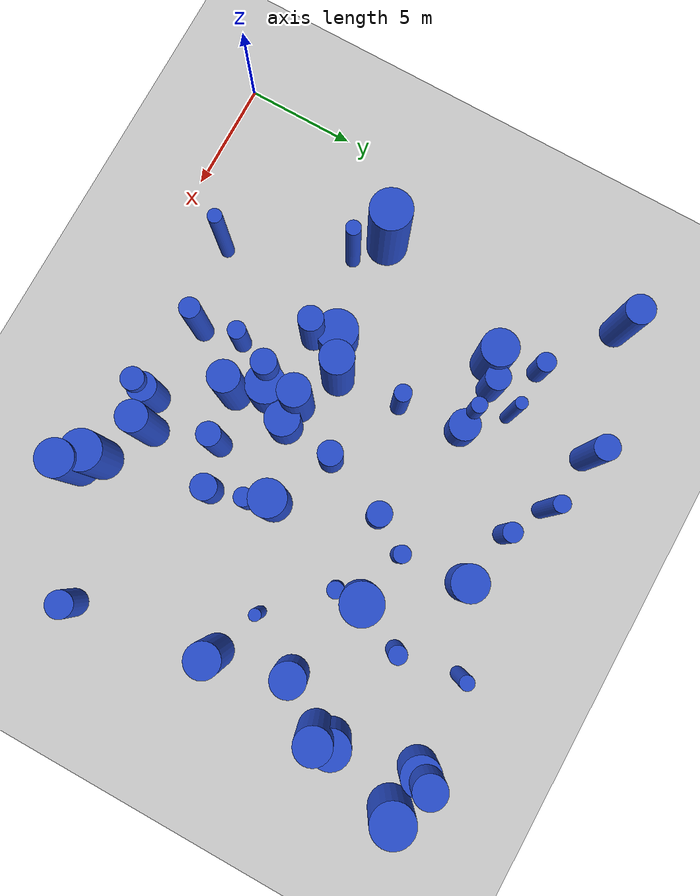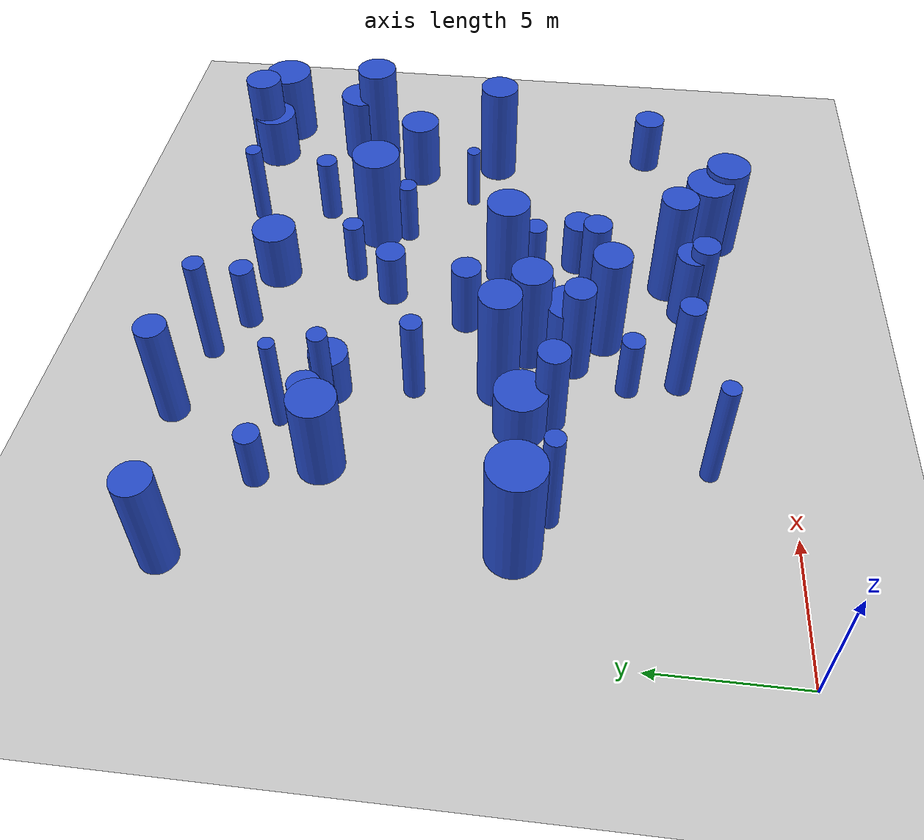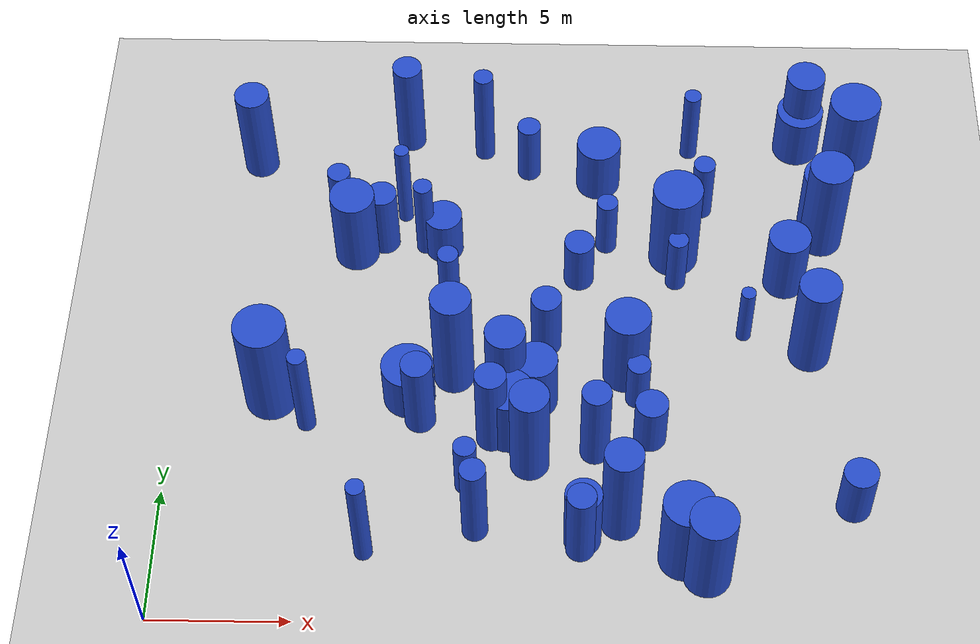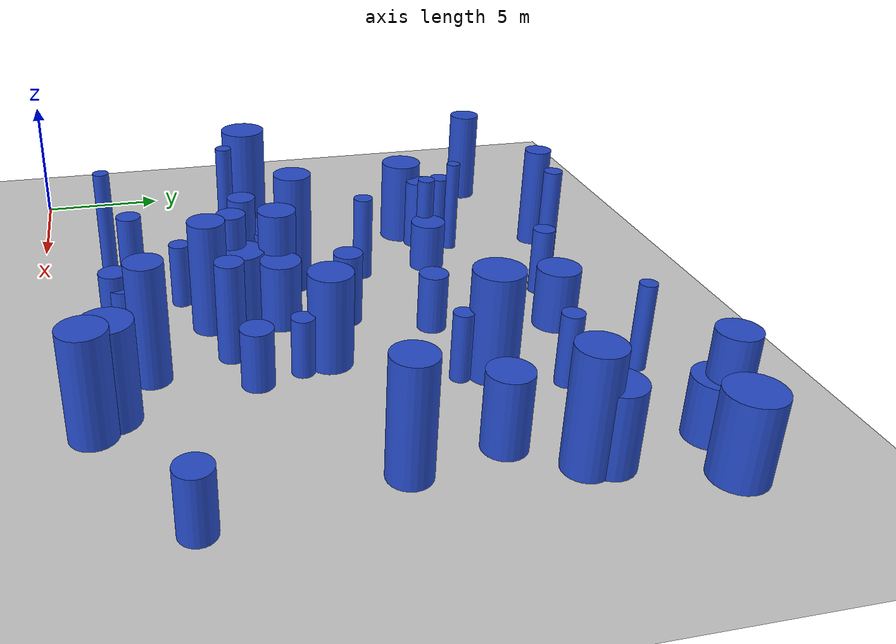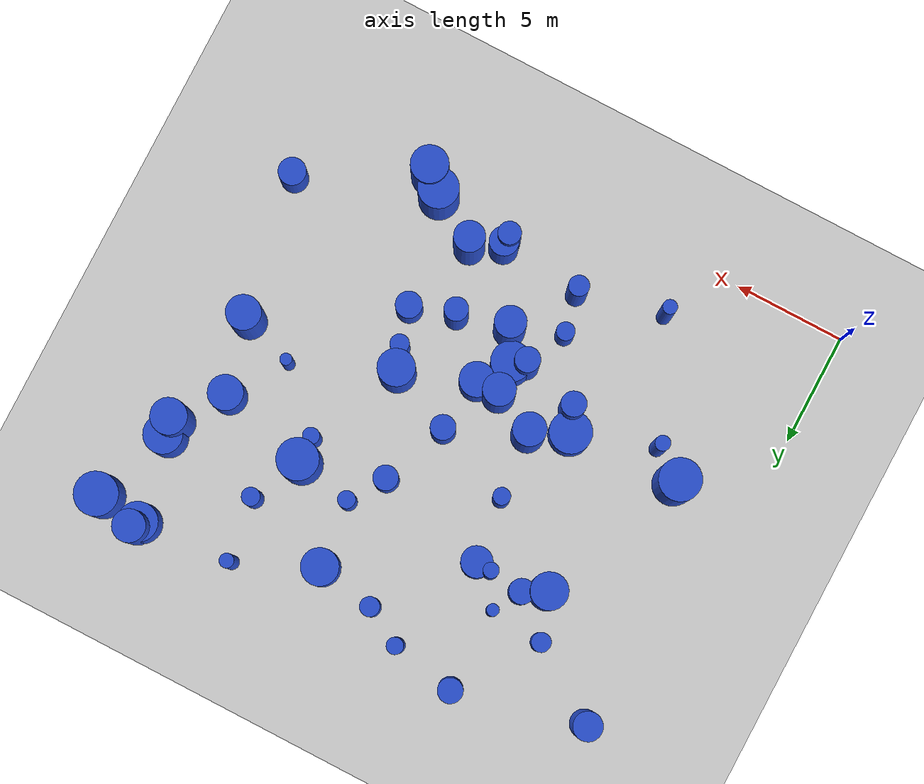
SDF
<sdf version="1.6">
 <world name="default">
  <model name="ground_plane">
   <static>1</static>
   <link name="link">
    <collision name="collision">
     <geometry><plane><normal>0 0 1</normal><size>100 100</size></plane></geometry>
     <surface><friction><ode><mu>100</mu><mu2>50</mu2></ode></friction></surface>
    </collision>
    <visual name="visual">
     <cast_shadows>0</cast_shadows>
     <geometry><plane><normal>0 0 1</normal><size>100 100</size></plane></geometry>
     <material>
      <script><uri>file://media/materials/scripts/gazebo.material</uri><name>Gazebo/Grey</name></script>
     </material>
    </visual>
   </link>
  </model>
  <model name="11">
   <static>0</static>
   <link name="link">
    <inertial>
     <mass>2</mass>
     <inertia><ixx>1.92531</ixx><ixy>0</ixy><ixz>0</ixz><iyy>1.92531</iyy><iyz>0</iyz><izz>0.103853</izz></inertia>
    </inertial>
    <collision name="collision">
     <geometry><cylinder><length>3.35266</length><radius>0.322263</radius></cylinder></geometry>
     <surface><contact><collide_without_contact>1</collide_without_contact></contact></surface>
    </collision>
    <visual name="visual">
     <geometry><cylinder><length>3.35266</length><radius>0.322263</radius></cylinder></geometry>
     <material>
      <script><uri>file://media/materials/scripts/gazebo.material</uri><name>Gazebo/Blue</name></script>
     </material>
    </visual>
    <gravity>0</gravity>
   </link>
   <pose>18.8928 20.868 1.67633 0 -0 0</pose>
  </model>
  <model name="12">
   <static>0</static>
   <link name="link">
    <inertial>
     <mass>2</mass>
     <inertia><ixx>2.8515</ixx><ixy>0</ixy><ixz>0</ixz><iyy>2.8515</iyy><iyz>0</iyz><izz>0.315958</izz></inertia>
    </inertial>
    <collision name="collision">
     <geometry><cylinder><length>4.02009</length><radius>0.562101</radius></cylinder></geometry>
     <surface><contact><collide_without_contact>1</collide_without_contact></contact></surface>
    </collision>
    <visual name="visual">
     <geometry><cylinder><length>4.02009</length><radius>0.562101</radius></cylinder></geometry>
     <material>
      <script><uri>file://media/materials/scripts/gazebo.material</uri><name>Gazebo/Blue</name></script>
     </material>
    </visual>
    <gravity>0</gravity>
   </link>
   <pose>11.5625 7.45117 2.01004 0 -0 0</pose>
  </model>
  <model name="16">
   <static>0</static>
   <link name="link">
    <inertial>
     <mass>2</mass>
     <inertia><ixx>1.17439</ixx><ixy>0</ixy><ixz>0</ixz><iyy>1.17439</iyy><iyz>0</iyz><izz>0.167306</izz></inertia>
    </inertial>
    <collision name="collision">
     <geometry><cylinder><length>2.55821</length><radius>0.40903</radius></cylinder></geometry>
     <surface><contact><collide_without_contact>1</collide_without_contact></contact></surface>
    </collision>
    <visual name="visual">
     <geometry><cylinder><length>2.55821</length><radius>0.40903</radius></cylinder></geometry>
     <material>
      <script><uri>file://media/materials/scripts/gazebo.material</uri><name>Gazebo/Blue</name></script>
     </material>
    </visual>
    <gravity>0</gravity>
   </link>
   <pose>10.7144 5.49413 1.27911 0 -0 0</pose>
  </model>
  <model name="21">
   <static>0</static>
   <link name="link">
    <inertial>
     <mass>2</mass>
     <inertia><ixx>1.51849</ixx><ixy>0</ixy><ixz>0</ixz><iyy>1.51849</iyy><iyz>0</iyz><izz>0.311536</izz></inertia>
    </inertial>
    <collision name="collision">
     <geometry><cylinder><length>2.85943</length><radius>0.558154</radius></cylinder></geometry>
     <surface><contact><collide_without_contact>1</collide_without_contact></contact></surface>
    </collision>
    <visual name="visual">
     <geometry><cylinder><length>2.85943</length><radius>0.558154</radius></cylinder></geometry>
     <material>
      <script><uri>file://media/materials/scripts/gazebo.material</uri><name>Gazebo/Blue</name></script>
     </material>
    </visual>
    <gravity>0</gravity>
   </link>
   <pose>13.4368 11.5878 1.42972 0 -0 0</pose>
  </model>
  <model name="23">
   <static>0</static>
   <link name="link">
    <inertial>
     <mass>2</mass>
     <inertia>
      <ixx>1.21853</ixx>
      <ixy>0</ixy>
      <ixz>0</ixz>
      <iyy>1.21853</iyy>
      <iyz>0</iyz>
      <izz>0.0726974</izz>
     </inertia>
    </inertial>
    <collision name="collision">
     <geometry><cylinder><length>2.66328</length><radius>0.269625</radius></cylinder></geometry>
     <surface><contact><collide_without_contact>1</collide_without_contact></contact></surface>
    </collision>
    <visual name="visual">
     <geometry><cylinder><length>2.66328</length><radius>0.269625</radius></cylinder></geometry>
     <material>
      <script><uri>file://media/materials/scripts/gazebo.material</uri><name>Gazebo/Blue</name></script>
     </material>
    </visual>
    <gravity>0</gravity>
   </link>
   <pose>20.7295 12.1101 1.33164 0 -0 0</pose>
  </model>
  <model name="29">
   <static>0</static>
   <link name="link">
    <inertial>
     <mass>2</mass>
     <inertia><ixx>1.20712</ixx><ixy>0</ixy><ixz>0</ixz><iyy>1.20712</iyy><iyz>0</iyz><izz>0.139764</izz></inertia>
    </inertial>
    <collision name="collision">
     <geometry><cylinder><length>2.61217</length><radius>0.37385</radius></cylinder></geometry>
     <surface><contact><collide_without_contact>1</collide_without_contact></contact></surface>
    </collision>
    <visual name="visual">
     <geometry><cylinder><length>2.61217</length><radius>0.37385</radius></cylinder></geometry>
     <material>
      <script><uri>file://media/materials/scripts/gazebo.material</uri><name>Gazebo/Blue</name></script>
     </material>
    </visual>
    <gravity>0</gravity>
   </link>
   <pose>18.2533 14.5095 1.30608 0 -0 0</pose>
  </model>
  <model name="30">
   <static>0</static>
   <link name="link">
    <inertial>
     <mass>2</mass>
     <inertia><ixx>4.21766</ixx><ixy>0</ixy><ixz>0</ixz><iyy>4.21766</iyy><iyz>0</iyz><izz>0.543405</izz></inertia>
    </inertial>
    <collision name="collision">
     <geometry><cylinder><length>4.86577</length><radius>0.73716</radius></cylinder></geometry>
     <surface><contact><collide_without_contact>1</collide_without_contact></contact></surface>
    </collision>
    <visual name="visual">
     <geometry><cylinder><length>4.86577</length><radius>0.73716</radius></cylinder></geometry>
     <material>
      <script><uri>file://media/materials/scripts/gazebo.material</uri><name>Gazebo/Blue</name></script>
     </material>
    </visual>
    <gravity>0</gravity>
   </link>
   <pose>10.1121 10.083 2.43289 0 -0 0</pose>
  </model>
  <model name="38">
   <static>0</static>
   <link name="link">
    <inertial>
     <mass>2</mass>
     <inertia><ixx>2.59248</ixx><ixy>0</ixy><ixz>0</ixz><iyy>2.59248</iyy><iyz>0</iyz><izz>0.279767</izz></inertia>
    </inertial>
    <collision name="collision">
     <geometry><cylinder><length>3.83609</length><radius>0.52893</radius></cylinder></geometry>
     <surface><contact><collide_without_contact>1</collide_without_contact></contact></surface>
    </collision>
    <visual name="visual">
     <geometry><cylinder><length>3.83609</length><radius>0.52893</radius></cylinder></geometry>
     <material>
      <script><uri>file://media/materials/scripts/gazebo.material</uri><name>Gazebo/Blue</name></script>
     </material>
    </visual>
    <gravity>0</gravity>
   </link>
   <pose>15.2362 6.93709 1.91805 0 -0 0</pose>
  </model>
  <model name="39">
   <static>0</static>
   <link name="link">
    <inertial>
     <mass>2</mass>
     <inertia><ixx>3.37987</ixx><ixy>0</ixy><ixz>0</ixz><iyy>3.37987</iyy><iyz>0</iyz><izz>0.590027</izz></inertia>
    </inertial>
    <collision name="collision">
     <geometry><cylinder><length>4.30223</length><radius>0.768132</radius></cylinder></geometry>
     <surface><contact><collide_without_contact>1</collide_without_contact></contact></surface>
    </collision>
    <visual name="visual">
     <geometry><cylinder><length>4.30223</length><radius>0.768132</radius></cylinder></geometry>
     <material>
      <script><uri>file://media/materials/scripts/gazebo.material</uri><name>Gazebo/Blue</name></script>
     </material>
    </visual>
    <gravity>0</gravity>
   </link>
   <pose>23.0982 11.2765 2.15111 0 -0 0</pose>
  </model>
  <model name="44">
   <static>0</static>
   <link name="link">
    <inertial>
     <mass>2</mass>
     <inertia>
      <ixx>0.976726</ixx>
      <ixy>0</ixy>
      <ixz>0</ixz>
      <iyy>0.976726</iyy>
      <iyz>0</iyz>
      <izz>0.189761</izz>
     </inertia>
    </inertial>
    <collision name="collision">
     <geometry><cylinder><length>2.30023</length><radius>0.435615</radius></cylinder></geometry>
     <surface><contact><collide_without_contact>1</collide_without_contact></contact></surface>
    </collision>
    <visual name="visual">
     <geometry><cylinder><length>2.30023</length><radius>0.435615</radius></cylinder></geometry>
     <material>
      <script><uri>file://media/materials/scripts/gazebo.material</uri><name>Gazebo/Blue</name></script>
     </material>
    </visual>
    <gravity>0</gravity>
   </link>
   <pose>5.48669 17.7345 1.15012 0 -0 0</pose>
  </model>
  <model name="53">
   <static>0</static>
   <link name="link">
    <inertial>
     <mass>2</mass>
     <inertia><ixx>1.81846</ixx><ixy>0</ixy><ixz>0</ixz><iyy>1.81846</iyy><iyz>0</iyz><izz>0.422521</izz></inertia>
    </inertial>
    <collision name="collision">
     <geometry><cylinder><length>3.10535</length><radius>0.650016</radius></cylinder></geometry>
     <surface><contact><collide_without_contact>1</collide_without_contact></contact></surface>
    </collision>
    <visual name="visual">
     <geometry><cylinder><length>3.10535</length><radius>0.650016</radius></cylinder></geometry>
     <material>
      <script><uri>file://media/materials/scripts/gazebo.material</uri><name>Gazebo/Blue</name></script>
     </material>
    </visual>
    <gravity>0</gravity>
   </link>
   <pose>14.8157 3.34289 1.55268 0 -0 0</pose>
  </model>
  <model name="60">
   <static>0</static>
   <link name="link">
    <inertial>
     <mass>2</mass>
     <inertia><ixx>1.10854</ixx><ixy>0</ixy><ixz>0</ixz><iyy>1.10854</iyy><iyz>0</iyz><izz>0.377234</izz></inertia>
    </inertial>
    <collision name="collision">
     <geometry><cylinder><length>2.34937</length><radius>0.614194</radius></cylinder></geometry>
     <surface><contact><collide_without_contact>1</collide_without_contact></contact></surface>
    </collision>
    <visual name="visual">
     <geometry><cylinder><length>2.34937</length><radius>0.614194</radius></cylinder></geometry>
     <material>
      <script><uri>file://media/materials/scripts/gazebo.material</uri><name>Gazebo/Blue</name></script>
     </material>
    </visual>
    <gravity>0</gravity>
   </link>
   <pose>24.3057 4.8136 1.17468 0 -0 0</pose>
  </model>
  <model name="65">
   <static>0</static>
   <link name="link">
    <inertial>
     <mass>2</mass>
     <inertia><ixx>0.9257</ixx><ixy>0</ixy><ixz>0</ixz><iyy>0.9257</iyy><iyz>0</iyz><izz>0.495184</izz></inertia>
    </inertial>
    <collision name="collision">
     <geometry><cylinder><length>2.01709</length><radius>0.703693</radius></cylinder></geometry>
     <surface><contact><collide_without_contact>1</collide_without_contact></contact></surface>
    </collision>
    <visual name="visual">
     <geometry><cylinder><length>2.01709</length><radius>0.703693</radius></cylinder></geometry>
     <material>
      <script><uri>file://media/materials/scripts/gazebo.material</uri><name>Gazebo/Blue</name></script>
     </material>
    </visual>
    <gravity>0</gravity>
   </link>
   <pose>9.50819 15.9698 1.00854 0 -0 0</pose>
  </model>
  <model name="73">
   <static>0</static>
   <link name="link">
    <inertial>
     <mass>2</mass>
     <inertia><ixx>2.98735</ixx><ixy>0</ixy><ixz>0</ixz><iyy>2.98735</iyy><iyz>0</iyz><izz>0.696623</izz></inertia>
    </inertial>
    <collision name="collision">
     <geometry><cylinder><length>3.97923</length><radius>0.834639</radius></cylinder></geometry>
     <surface><contact><collide_without_contact>1</collide_without_contact></contact></surface>
    </collision>
    <visual name="visual">
     <geometry><cylinder><length>3.97923</length><radius>0.834639</radius></cylinder></geometry>
     <material>
      <script><uri>file://media/materials/scripts/gazebo.material</uri><name>Gazebo/Blue</name></script>
     </material>
    </visual>
    <gravity>0</gravity>
   </link>
   <pose>19.0977 2.00565 1.98961 0 -0 0</pose>
  </model>
  <model name="78">
   <static>0</static>
   <link name="link">
    <inertial>
     <mass>2</mass>
     <inertia><ixx>1.63411</ixx><ixy>0</ixy><ixz>0</ixz><iyy>1.63411</iyy><iyz>0</iyz><izz>0.609649</izz></inertia>
    </inertial>
    <collision name="collision">
     <geometry><cylinder><length>2.82413</length><radius>0.7808</radius></cylinder></geometry>
     <surface><contact><collide_without_contact>1</collide_without_contact></contact></surface>
    </collision>
    <visual name="visual">
     <geometry><cylinder><length>2.82413</length><radius>0.7808</radius></cylinder></geometry>
     <material>
      <script><uri>file://media/materials/scripts/gazebo.material</uri><name>Gazebo/Blue</name></script>
     </material>
    </visual>
    <gravity>0</gravity>
   </link>
   <pose>22.3342 14.5742 1.41207 0 -0 0</pose>
  </model>
  <model name="79">
   <static>0</static>
   <link name="link">
    <inertial>
     <mass>2</mass>
     <inertia><ixx>2.78535</ixx><ixy>0</ixy><ixz>0</ixz><iyy>2.78535</iyy><iyz>0</iyz><izz>0.530146</izz></inertia>
    </inertial>
    <collision name="collision">
     <geometry><cylinder><length>3.88866</length><radius>0.728112</radius></cylinder></geometry>
     <surface><contact><collide_without_contact>1</collide_without_contact></contact></surface>
    </collision>
    <visual name="visual">
     <geometry><cylinder><length>3.88866</length><radius>0.728112</radius></cylinder></geometry>
     <material>
      <script><uri>file://media/materials/scripts/gazebo.material</uri><name>Gazebo/Blue</name></script>
     </material>
    </visual>
    <gravity>0</gravity>
   </link>
   <pose>23.1949 21.4732 1.94433 0 -0 0</pose>
  </model>
  <model name="80">
   <static>0</static>
   <link name="link">
    <inertial>
     <mass>2</mass>
     <inertia><ixx>3.19742</ixx><ixy>0</ixy><ixz>0</ixz><iyy>3.19742</iyy><iyz>0</iyz><izz>0.854459</izz></inertia>
    </inertial>
    <collision name="collision">
     <geometry><cylinder><length>4.0769</length><radius>0.924369</radius></cylinder></geometry>
     <surface><contact><collide_without_contact>1</collide_without_contact></contact></surface>
    </collision>
    <visual name="visual">
     <geometry><cylinder><length>4.0769</length><radius>0.924369</radius></cylinder></geometry>
     <material>
      <script><uri>file://media/materials/scripts/gazebo.material</uri><name>Gazebo/Blue</name></script>
     </material>
    </visual>
    <gravity>0</gravity>
   </link>
   <pose>18.194 15.6923 2.03845 0 -0 0</pose>
  </model>
  <model name="87">
   <static>0</static>
   <link name="link">
    <inertial>
     <mass>2</mass>
     <inertia><ixx>3.47091</ixx><ixy>0</ixy><ixz>0</ixz><iyy>3.47091</iyy><iyz>0</iyz><izz>0.644605</izz></inertia>
    </inertial>
    <collision name="collision">
     <geometry><cylinder><length>4.34645</length><radius>0.802873</radius></cylinder></geometry>
     <surface><contact><collide_without_contact>1</collide_without_contact></contact></surface>
    </collision>
    <visual name="visual">
     <geometry><cylinder><length>4.34645</length><radius>0.802873</radius></cylinder></geometry>
     <material>
      <script><uri>file://media/materials/scripts/gazebo.material</uri><name>Gazebo/Blue</name></script>
     </material>
    </visual>
    <gravity>0</gravity>
   </link>
   <pose>23.8248 16.6199 2.17323 0 -0 0</pose>
  </model>
  <model name="90">
   <static>0</static>
   <link name="link">
    <inertial>
     <mass>2</mass>
     <inertia><ixx>1.4671</ixx><ixy>0</ixy><ixz>0</ixz><iyy>1.4671</iyy><iyz>0</iyz><izz>0.605664</izz></inertia>
    </inertial>
    <collision name="collision">
     <geometry><cylinder><length>2.64303</length><radius>0.778244</radius></cylinder></geometry>
     <surface><contact><collide_without_contact>1</collide_without_contact></contact></surface>
    </collision>
    <visual name="visual">
     <geometry><cylinder><length>2.64303</length><radius>0.778244</radius></cylinder></geometry>
     <material>
      <script><uri>file://media/materials/scripts/gazebo.material</uri><name>Gazebo/Blue</name></script>
     </material>
    </visual>
    <gravity>0</gravity>
   </link>
   <pose>13.1102 9.08462 1.32152 0 -0 0</pose>
  </model>
  <model name="94">
   <static>0</static>
   <link name="link">
    <inertial>
     <mass>2</mass>
     <inertia><ixx>2.70975</ixx><ixy>0</ixy><ixz>0</ixz><iyy>2.70975</iyy><iyz>0</iyz><izz>0.812838</izz></inertia>
    </inertial>
    <collision name="collision">
     <geometry><cylinder><length>3.71753</length><radius>0.901575</radius></cylinder></geometry>
     <surface><contact><collide_without_contact>1</collide_without_contact></contact></surface>
    </collision>
    <visual name="visual">
     <geometry><cylinder><length>3.71753</length><radius>0.901575</radius></cylinder></geometry>
     <material>
      <script><uri>file://media/materials/scripts/gazebo.material</uri><name>Gazebo/Blue</name></script>
     </material>
    </visual>
    <gravity>0</gravity>
   </link>
   <pose>18.3144 2.69711 1.85876 0 -0 0</pose>
  </model>
  <model name="115">
   <static>0</static>
   <link name="link">
    <inertial>
     <mass>2</mass>
     <inertia><ixx>1.85668</ixx><ixy>0</ixy><ixz>0</ixz><iyy>1.85668</iyy><iyz>0</iyz><izz>0.738716</izz></inertia>
    </inertial>
    <collision name="collision">
     <geometry><cylinder><length>2.98729</length><radius>0.859486</radius></cylinder></geometry>
     <surface><contact><collide_without_contact>1</collide_without_contact></contact></surface>
    </collision>
    <visual name="visual">
     <geometry><cylinder><length>2.98729</length><radius>0.859486</radius></cylinder></geometry>
     <material>
      <script><uri>file://media/materials/scripts/gazebo.material</uri><name>Gazebo/Blue</name></script>
     </material>
    </visual>
    <gravity>0</gravity>
   </link>
   <pose>23.8388 17.3837 1.49365 0 -0 0</pose>
  </model>
  <model name="123">
   <static>0</static>
   <link name="link">
    <inertial>
     <mass>2</mass>
     <inertia><ixx>1.65697</ixx><ixy>0</ixy><ixz>0</ixz><iyy>1.65697</iyy><iyz>0</iyz><izz>0.79456</izz></inertia>
    </inertial>
    <collision name="collision">
     <geometry><cylinder><length>2.74921</length><radius>0.891381</radius></cylinder></geometry>
     <surface><contact><collide_without_contact>1</collide_without_contact></contact></surface>
    </collision>
    <visual name="visual">
     <geometry><cylinder><length>2.74921</length><radius>0.891381</radius></cylinder></geometry>
     <material>
      <script><uri>file://media/materials/scripts/gazebo.material</uri><name>Gazebo/Blue</name></script>
     </material>
    </visual>
    <gravity>0</gravity>
   </link>
   <pose>12.1687 7.73836 1.3746 0 -0 0</pose>
  </model>
  <model name="124">
   <static>0</static>
   <link name="link">
    <inertial>
     <mass>2</mass>
     <inertia><ixx>1.21882</ixx><ixy>0</ixy><ixz>0</ixz><iyy>1.21882</iyy><iyz>0</iyz><izz>0.784384</izz></inertia>
    </inertial>
    <collision name="collision">
     <geometry><cylinder><length>2.22706</length><radius>0.885655</radius></cylinder></geometry>
     <surface><contact><collide_without_contact>1</collide_without_contact></contact></surface>
    </collision>
    <visual name="visual">
     <geometry><cylinder><length>2.22706</length><radius>0.885655</radius></cylinder></geometry>
     <material>
      <script><uri>file://media/materials/scripts/gazebo.material</uri><name>Gazebo/Blue</name></script>
     </material>
    </visual>
    <gravity>0</gravity>
   </link>
   <pose>23.1164 21.1853 1.11353 0 -0 0</pose>
  </model>
  <model name="125">
   <static>0</static>
   <link name="link">
    <inertial>
     <mass>2</mass>
     <inertia><ixx>2.3621</ixx><ixy>0</ixy><ixz>0</ixz><iyy>2.3621</iyy><iyz>0</iyz><izz>0.687938</izz></inertia>
    </inertial>
    <collision name="collision">
     <geometry><cylinder><length>3.47977</length><radius>0.829421</radius></cylinder></geometry>
     <surface><contact><collide_without_contact>1</collide_without_contact></contact></surface>
    </collision>
    <visual name="visual">
     <geometry><cylinder><length>3.47977</length><radius>0.829421</radius></cylinder></geometry>
     <material>
      <script><uri>file://media/materials/scripts/gazebo.material</uri><name>Gazebo/Blue</name></script>
     </material>
    </visual>
    <gravity>0</gravity>
   </link>
   <pose>6.20639 15.6713 1.73988 0 -0 0</pose>
  </model>
  <model name="130">
   <static>0</static>
   <link name="link">
    <inertial>
     <mass>2</mass>
     <inertia><ixx>1.01324</ixx><ixy>0</ixy><ixz>0</ixz><iyy>1.01324</iyy><iyz>0</iyz><izz>0.350577</izz></inertia>
    </inertial>
    <collision name="collision">
     <geometry><cylinder><length>2.24225</length><radius>0.592095</radius></cylinder></geometry>
     <surface><contact><collide_without_contact>1</collide_without_contact></contact></surface>
    </collision>
    <visual name="visual">
     <geometry><cylinder><length>2.24225</length><radius>0.592095</radius></cylinder></geometry>
     <material>
      <script><uri>file://media/materials/scripts/gazebo.material</uri><name>Gazebo/Blue</name></script>
     </material>
    </visual>
    <gravity>0</gravity>
   </link>
   <pose>17.2024 7.57168 1.12113 0 -0 0</pose>
  </model>
  <model name="136">
   <static>0</static>
   <link name="link">
    <inertial>
     <mass>2</mass>
     <inertia><ixx>2.0309</ixx><ixy>0</ixy><ixz>0</ixz><iyy>2.0309</iyy><iyz>0</iyz><izz>0.942114</izz></inertia>
    </inertial>
    <collision name="collision">
     <geometry><cylinder><length>3.05925</length><radius>0.970626</radius></cylinder></geometry>
     <surface><contact><collide_without_contact>1</collide_without_contact></contact></surface>
    </collision>
    <visual name="visual">
     <geometry><cylinder><length>3.05925</length><radius>0.970626</radius></cylinder></geometry>
     <material>
      <script><uri>file://media/materials/scripts/gazebo.material</uri><name>Gazebo/Blue</name></script>
     </material>
    </visual>
    <gravity>0</gravity>
   </link>
   <pose>25.1529 20.9383 1.52963 0 -0 0</pose>
  </model>
  <model name="138">
   <static>0</static>
   <link name="link">
    <inertial>
     <mass>2</mass>
     <inertia><ixx>3.29254</ixx><ixy>0</ixy><ixz>0</ixz><iyy>3.29254</iyy><iyz>0</iyz><izz>0.103481</izz></inertia>
    </inertial>
    <collision name="collision">
     <geometry><cylinder><length>4.40963</length><radius>0.321685</radius></cylinder></geometry>
     <surface><contact><collide_without_contact>1</collide_without_contact></contact></surface>
    </collision>
    <visual name="visual">
     <geometry><cylinder><length>4.40963</length><radius>0.321685</radius></cylinder></geometry>
     <material>
      <script><uri>file://media/materials/scripts/gazebo.material</uri><name>Gazebo/Blue</name></script>
     </material>
    </visual>
    <gravity>0</gravity>
   </link>
   <pose>7.26746 2.7238 2.20481 0 -0 0</pose>
  </model>
  <model name="140">
   <static>0</static>
   <link name="link">
    <inertial>
     <mass>2</mass>
     <inertia><ixx>2.29963</ixx><ixy>0</ixy><ixz>0</ixz><iyy>2.29963</iyy><iyz>0</iyz><izz>0.260765</izz></inertia>
    </inertial>
    <collision name="collision">
     <geometry><cylinder><length>3.6077</length><radius>0.510651</radius></cylinder></geometry>
     <surface><contact><collide_without_contact>1</collide_without_contact></contact></surface>
    </collision>
    <visual name="visual">
     <geometry><cylinder><length>3.6077</length><radius>0.510651</radius></cylinder></geometry>
     <material>
      <script><uri>file://media/materials/scripts/gazebo.material</uri><name>Gazebo/Blue</name></script>
     </material>
    </visual>
    <gravity>0</gravity>
   </link>
   <pose>14.7457 2.99016 1.80385 0 -0 0</pose>
  </model>
  <model name="144">
   <static>0</static>
   <link name="link">
    <inertial>
     <mass>2</mass>
     <inertia><ixx>2.25768</ixx><ixy>0</ixy><ixz>0</ixz><iyy>2.25768</iyy><iyz>0</iyz><izz>0.123162</izz></inertia>
    </inertial>
    <collision name="collision">
     <geometry><cylinder><length>3.62996</length><radius>0.350945</radius></cylinder></geometry>
     <surface><contact><collide_without_contact>1</collide_without_contact></contact></surface>
    </collision>
    <visual name="visual">
     <geometry><cylinder><length>3.62996</length><radius>0.350945</radius></cylinder></geometry>
     <material>
      <script><uri>file://media/materials/scripts/gazebo.material</uri><name>Gazebo/Blue</name></script>
     </material>
    </visual>
    <gravity>0</gravity>
   </link>
   <pose>8.7995 16.037 1.81498 0 -0 0</pose>
  </model>
  <model name="150">
   <static>0</static>
   <link name="link">
    <inertial>
     <mass>2</mass>
     <inertia><ixx>3.72478</ixx><ixy>0</ixy><ixz>0</ixz><iyy>3.72478</iyy><iyz>0</iyz><izz>0.470803</izz></inertia>
    </inertial>
    <collision name="collision">
     <geometry><cylinder><length>4.57562</length><radius>0.686151</radius></cylinder></geometry>
     <surface><contact><collide_without_contact>1</collide_without_contact></contact></surface>
    </collision>
    <visual name="visual">
     <geometry><cylinder><length>4.57562</length><radius>0.686151</radius></cylinder></geometry>
     <material>
      <script><uri>file://media/materials/scripts/gazebo.material</uri><name>Gazebo/Blue</name></script>
     </material>
    </visual>
    <gravity>0</gravity>
   </link>
   <pose>16.135 4.02471 2.28781 0 -0 0</pose>
  </model>
  <model name="158">
   <static>0</static>
   <link name="link">
    <inertial>
     <mass>2</mass>
     <inertia><ixx>1.28929</ixx><ixy>0</ixy><ixz>0</ixz><iyy>1.28929</iyy><iyz>0</iyz><izz>0.694785</izz></inertia>
    </inertial>
    <collision name="collision">
     <geometry><cylinder><length>2.37727</length><radius>0.833537</radius></cylinder></geometry>
     <surface><contact><collide_without_contact>1</collide_without_contact></contact></surface>
    </collision>
    <visual name="visual">
     <geometry><cylinder><length>2.37727</length><radius>0.833537</radius></cylinder></geometry>
     <material>
      <script><uri>file://media/materials/scripts/gazebo.material</uri><name>Gazebo/Blue</name></script>
     </material>
    </visual>
    <gravity>0</gravity>
   </link>
   <pose>15.3296 19.2733 1.18863 0 -0 0</pose>
  </model>
  <model name="165">
   <static>0</static>
   <link name="link">
    <inertial>
     <mass>2</mass>
     <inertia><ixx>1.34519</ixx><ixy>0</ixy><ixz>0</ixz><iyy>1.34519</iyy><iyz>0</iyz><izz>0.16718</izz></inertia>
    </inertial>
    <collision name="collision">
     <geometry><cylinder><length>2.75129</length><radius>0.408876</radius></cylinder></geometry>
     <surface><contact><collide_without_contact>1</collide_without_contact></contact></surface>
    </collision>
    <visual name="visual">
     <geometry><cylinder><length>2.75129</length><radius>0.408876</radius></cylinder></geometry>
     <material>
      <script><uri>file://media/materials/scripts/gazebo.material</uri><name>Gazebo/Blue</name></script>
     </material>
    </visual>
    <gravity>0</gravity>
   </link>
   <pose>19.3045 17.9938 1.37564 0 -0 0</pose>
  </model>
  <model name="170">
   <static>0</static>
   <link name="link">
    <inertial>
     <mass>2</mass>
     <inertia><ixx>3.33499</ixx><ixy>0</ixy><ixz>0</ixz><iyy>3.33499</iyy><iyz>0</iyz><izz>0.13907</izz></inertia>
    </inertial>
    <collision name="collision">
     <geometry><cylinder><length>4.42637</length><radius>0.372922</radius></cylinder></geometry>
     <surface><contact><collide_without_contact>1</collide_without_contact></contact></surface>
    </collision>
    <visual name="visual">
     <geometry><cylinder><length>4.42637</length><radius>0.372922</radius></cylinder></geometry>
     <material>
      <script><uri>file://media/materials/scripts/gazebo.material</uri><name>Gazebo/Blue</name></script>
     </material>
    </visual>
    <gravity>0</gravity>
   </link>
   <pose>10.901 20.7328 2.21318 0 -0 0</pose>
  </model>
  <model name="176">
   <static>0</static>
   <link name="link">
    <inertial>
     <mass>2</mass>
     <inertia><ixx>2.99267</ixx><ixy>0</ixy><ixz>0</ixz><iyy>2.99267</iyy><iyz>0</iyz><izz>0.422823</izz></inertia>
    </inertial>
    <collision name="collision">
     <geometry><cylinder><length>4.08504</length><radius>0.650248</radius></cylinder></geometry>
     <surface><contact><collide_without_contact>1</collide_without_contact></contact></surface>
    </collision>
    <visual name="visual">
     <geometry><cylinder><length>4.08504</length><radius>0.650248</radius></cylinder></geometry>
     <material>
      <script><uri>file://media/materials/scripts/gazebo.material</uri><name>Gazebo/Blue</name></script>
     </material>
    </visual>
    <gravity>0</gravity>
   </link>
   <pose>2.16702 19.9621 2.04252 0 -0 0</pose>
  </model>
  <model name="180">
   <static>0</static>
   <link name="link">
    <inertial>
     <mass>2</mass>
     <inertia><ixx>3.17189</ixx><ixy>0</ixy><ixz>0</ixz><iyy>3.17189</iyy><iyz>0</iyz><izz>0.306945</izz></inertia>
    </inertial>
    <collision name="collision">
     <geometry><cylinder><length>4.25564</length><radius>0.554026</radius></cylinder></geometry>
     <surface><contact><collide_without_contact>1</collide_without_contact></contact></surface>
    </collision>
    <visual name="visual">
     <geometry><cylinder><length>4.25564</length><radius>0.554026</radius></cylinder></geometry>
     <material>
      <script><uri>file://media/materials/scripts/gazebo.material</uri><name>Gazebo/Blue</name></script>
     </material>
    </visual>
    <gravity>0</gravity>
   </link>
   <pose>7.97734 21.3154 2.12782 0 -0 0</pose>
  </model>
  <model name="192">
   <static>0</static>
   <link name="link">
    <inertial>
     <mass>2</mass>
     <inertia><ixx>1.12736</ixx><ixy>0</ixy><ixz>0</ixz><iyy>1.12736</iyy><iyz>0</iyz><izz>0.893205</izz></inertia>
    </inertial>
    <collision name="collision">
     <geometry><cylinder><length>2.02103</length><radius>0.945095</radius></cylinder></geometry>
     <surface><contact><collide_without_contact>1</collide_without_contact></contact></surface>
    </collision>
    <visual name="visual">
     <geometry><cylinder><length>2.02103</length><radius>0.945095</radius></cylinder></geometry>
     <material>
      <script><uri>file://media/materials/scripts/gazebo.material</uri><name>Gazebo/Blue</name></script>
     </material>
    </visual>
    <gravity>0</gravity>
   </link>
   <pose>8.51962 9.17964 1.01052 0 -0 0</pose>
  </model>
  <model name="197">
   <static>0</static>
   <link name="link">
    <inertial>
     <mass>2</mass>
     <inertia><ixx>2.08718</ixx><ixy>0</ixy><ixz>0</ixz><iyy>2.08718</iyy><iyz>0</iyz><izz>0.148226</izz></inertia>
    </inertial>
    <collision name="collision">
     <geometry><cylinder><length>3.4754</length><radius>0.385002</radius></cylinder></geometry>
     <surface><contact><collide_without_contact>1</collide_without_contact></contact></surface>
    </collision>
    <visual name="visual">
     <geometry><cylinder><length>3.4754</length><radius>0.385002</radius></cylinder></geometry>
     <material>
      <script><uri>file://media/materials/scripts/gazebo.material</uri><name>Gazebo/Blue</name></script>
     </material>
    </visual>
    <gravity>0</gravity>
   </link>
   <pose>9.85029 13.0514 1.7377 0 -0 0</pose>
  </model>
  <model name="198">
   <static>0</static>
   <link name="link">
    <inertial>
     <mass>2</mass>
     <inertia><ixx>2.28454</ixx><ixy>0</ixy><ixz>0</ixz><iyy>2.28454</iyy><iyz>0</iyz><izz>0.315745</izz></inertia>
    </inertial>
    <collision name="collision">
     <geometry><cylinder><length>3.57212</length><radius>0.561912</radius></cylinder></geometry>
     <surface><contact><collide_without_contact>1</collide_without_contact></contact></surface>
    </collision>
    <visual name="visual">
     <geometry><cylinder><length>3.57212</length><radius>0.561912</radius></cylinder></geometry>
     <material>
      <script><uri>file://media/materials/scripts/gazebo.material</uri><name>Gazebo/Blue</name></script>
     </material>
    </visual>
    <gravity>0</gravity>
   </link>
   <pose>8.96137 8.1767 1.78606 0 -0 0</pose>
  </model>
  <model name="204">
   <static>0</static>
   <link name="link">
    <inertial>
     <mass>2</mass>
     <inertia>
      <ixx>2.59021</ixx>
      <ixy>0</ixy>
      <ixz>0</ixz>
      <iyy>2.59021</iyy>
      <iyz>0</iyz>
      <izz>0.0764051</izz>
     </inertia>
    </inertial>
    <collision name="collision">
     <geometry><cylinder><length>3.91306</length><radius>0.276415</radius></cylinder></geometry>
     <surface><contact><collide_without_contact>1</collide_without_contact></contact></surface>
    </collision>
    <visual name="visual">
     <geometry><cylinder><length>3.91306</length><radius>0.276415</radius></cylinder></geometry>
     <material>
      <script><uri>file://media/materials/scripts/gazebo.material</uri><name>Gazebo/Blue</name></script>
     </material>
    </visual>
    <gravity>0</gravity>
   </link>
   <pose>7.95634 17.4906 1.95653 0 -0 0</pose>
  </model>
  <model name="213">
   <static>0</static>
   <link name="link">
    <inertial>
     <mass>2</mass>
     <inertia><ixx>1.3254</ixx><ixy>0</ixy><ixz>0</ixz><iyy>1.3254</iyy><iyz>0</iyz><izz>0.192068</izz></inertia>
    </inertial>
    <collision name="collision">
     <geometry><cylinder><length>2.71592</length><radius>0.438255</radius></cylinder></geometry>
     <surface><contact><collide_without_contact>1</collide_without_contact></contact></surface>
    </collision>
    <visual name="visual">
     <geometry><cylinder><length>2.71592</length><radius>0.438255</radius></cylinder></geometry>
     <material>
      <script><uri>file://media/materials/scripts/gazebo.material</uri><name>Gazebo/Blue</name></script>
     </material>
    </visual>
    <gravity>0</gravity>
   </link>
   <pose>12.6501 19.7806 1.35796 0 -0 0</pose>
  </model>
  <model name="214">
   <static>0</static>
   <link name="link">
    <inertial>
     <mass>2</mass>
     <inertia><ixx>2.84705</ixx><ixy>0</ixy><ixz>0</ixz><iyy>2.84705</iyy><iyz>0</iyz><izz>0.209624</izz></inertia>
    </inertial>
    <collision name="collision">
     <geometry><cylinder><length>4.05628</length><radius>0.457847</radius></cylinder></geometry>
     <surface><contact><collide_without_contact>1</collide_without_contact></contact></surface>
    </collision>
    <visual name="visual">
     <geometry><cylinder><length>4.05628</length><radius>0.457847</radius></cylinder></geometry>
     <material>
      <script><uri>file://media/materials/scripts/gazebo.material</uri><name>Gazebo/Blue</name></script>
     </material>
    </visual>
    <gravity>0</gravity>
   </link>
   <pose>11.0856 3.67308 2.02814 0 -0 0</pose>
  </model>
  <model name="218">
   <static>0</static>
   <link name="link">
    <inertial>
     <mass>2</mass>
     <inertia><ixx>1.0151</ixx><ixy>0</ixy><ixz>0</ixz><iyy>1.0151</iyy><iyz>0</iyz><izz>0.309749</izz></inertia>
    </inertial>
    <collision name="collision">
     <geometry><cylinder><length>2.27186</length><radius>0.556551</radius></cylinder></geometry>
     <surface><contact><collide_without_contact>1</collide_without_contact></contact></surface>
    </collision>
    <visual name="visual">
     <geometry><cylinder><length>2.27186</length><radius>0.556551</radius></cylinder></geometry>
     <material>
      <script><uri>file://media/materials/scripts/gazebo.material</uri><name>Gazebo/Blue</name></script>
     </material>
    </visual>
    <gravity>0</gravity>
   </link>
   <pose>14.6183 14.6039 1.13593 0 -0 0</pose>
  </model>
  <model name="219">
   <static>0</static>
   <link name="link">
    <inertial>
     <mass>2</mass>
     <inertia><ixx>3.49562</ixx><ixy>0</ixy><ixz>0</ixz><iyy>3.49562</iyy><iyz>0</iyz><izz>0.488831</izz></inertia>
    </inertial>
    <collision name="collision">
     <geometry><cylinder><length>4.4167</length><radius>0.699164</radius></cylinder></geometry>
     <surface><contact><collide_without_contact>1</collide_without_contact></contact></surface>
    </collision>
    <visual name="visual">
     <geometry><cylinder><length>4.4167</length><radius>0.699164</radius></cylinder></geometry>
     <material>
      <script><uri>file://media/materials/scripts/gazebo.material</uri><name>Gazebo/Blue</name></script>
     </material>
    </visual>
    <gravity>0</gravity>
   </link>
   <pose>12.9305 6.40169 2.20835 0 -0 0</pose>
  </model>
  <model name="222">
   <static>0</static>
   <link name="link">
    <inertial>
     <mass>2</mass>
     <inertia><ixx>2.55571</ixx><ixy>0</ixy><ixz>0</ixz><iyy>2.55571</iyy><iyz>0</iyz><izz>0.681111</izz></inertia>
    </inertial>
    <collision name="collision">
     <geometry><cylinder><length>3.64567</length><radius>0.825295</radius></cylinder></geometry>
     <surface><contact><collide_without_contact>1</collide_without_contact></contact></surface>
    </collision>
    <visual name="visual">
     <geometry><cylinder><length>3.64567</length><radius>0.825295</radius></cylinder></geometry>
     <material>
      <script><uri>file://media/materials/scripts/gazebo.material</uri><name>Gazebo/Blue</name></script>
     </material>
    </visual>
    <gravity>0</gravity>
   </link>
   <pose>16.3443 10.303 1.82283 0 -0 0</pose>
  </model>
  <model name="225">
   <static>0</static>
   <link name="link">
    <inertial>
     <mass>2</mass>
     <inertia><ixx>1.21886</ixx><ixy>0</ixy><ixz>0</ixz><iyy>1.21886</iyy><iyz>0</iyz><izz>0.152991</izz></inertia>
    </inertial>
    <collision name="collision">
     <geometry><cylinder><length>2.61805</length><radius>0.391141</radius></cylinder></geometry>
     <surface><contact><collide_without_contact>1</collide_without_contact></contact></surface>
    </collision>
    <visual name="visual">
     <geometry><cylinder><length>2.61805</length><radius>0.391141</radius></cylinder></geometry>
     <material>
      <script><uri>file://media/materials/scripts/gazebo.material</uri><name>Gazebo/Blue</name></script>
     </material>
    </visual>
    <gravity>0</gravity>
   </link>
   <pose>15.6454 16.2121 1.30903 0 -0 0</pose>
  </model>
  <model name="234">
   <static>0</static>
   <link name="link">
    <inertial>
     <mass>2</mass>
     <inertia><ixx>3.89752</ixx><ixy>0</ixy><ixz>0</ixz><iyy>3.89752</iyy><iyz>0</iyz><izz>0.881246</izz></inertia>
    </inertial>
    <collision name="collision">
     <geometry><cylinder><length>4.55427</length><radius>0.938747</radius></cylinder></geometry>
     <surface><contact><collide_without_contact>1</collide_without_contact></contact></surface>
    </collision>
    <visual name="visual">
     <geometry><cylinder><length>4.55427</length><radius>0.938747</radius></cylinder></geometry>
     <material>
      <script><uri>file://media/materials/scripts/gazebo.material</uri><name>Gazebo/Blue</name></script>
     </material>
    </visual>
    <gravity>0</gravity>
   </link>
   <pose>3.53021 9.00128 2.27713 0 -0 0</pose>
  </model>
  <model name="236">
   <static>0</static>
   <link name="link">
    <inertial>
     <mass>2</mass>
     <inertia><ixx>1.61074</ixx><ixy>0</ixy><ixz>0</ixz><iyy>1.61074</iyy><iyz>0</iyz><izz>0.316828</izz></inertia>
    </inertial>
    <collision name="collision">
     <geometry><cylinder><length>2.95194</length><radius>0.562875</radius></cylinder></geometry>
     <surface><contact><collide_without_contact>1</collide_without_contact></contact></surface>
    </collision>
    <visual name="visual">
     <geometry><cylinder><length>2.95194</length><radius>0.562875</radius></cylinder></geometry>
     <material>
      <script><uri>file://media/materials/scripts/gazebo.material</uri><name>Gazebo/Blue</name></script>
     </material>
    </visual>
    <gravity>0</gravity>
   </link>
   <pose>7.23209 16.2098 1.47597 0 -0 0</pose>
  </model>
  <model name="243">
   <static>0</static>
   <link name="link">
    <inertial>
     <mass>2</mass>
     <inertia><ixx>3.04842</ixx><ixy>0</ixy><ixz>0</ixz><iyy>3.04842</iyy><iyz>0</iyz><izz>0.115591</izz></inertia>
    </inertial>
    <collision name="collision">
     <geometry><cylinder><length>4.236</length><radius>0.339987</radius></cylinder></geometry>
     <surface><contact><collide_without_contact>1</collide_without_contact></contact></surface>
    </collision>
    <visual name="visual">
     <geometry><cylinder><length>4.236</length><radius>0.339987</radius></cylinder></geometry>
     <material>
      <script><uri>file://media/materials/scripts/gazebo.material</uri><name>Gazebo/Blue</name></script>
     </material>
    </visual>
    <gravity>0</gravity>
   </link>
   <pose>4.88177 7.95931 2.118 0 -0 0</pose>
  </model>
  <model name="245">
   <static>0</static>
   <link name="link">
    <inertial>
     <mass>2</mass>
     <inertia><ixx>3.23651</ixx><ixy>0</ixy><ixz>0</ixz><iyy>3.23651</iyy><iyz>0</iyz><izz>0.527564</izz></inertia>
    </inertial>
    <collision name="collision">
     <geometry><cylinder><length>4.22331</length><radius>0.726336</radius></cylinder></geometry>
     <surface><contact><collide_without_contact>1</collide_without_contact></contact></surface>
    </collision>
    <visual name="visual">
     <geometry><cylinder><length>4.22331</length><radius>0.726336</radius></cylinder></geometry>
     <material>
      <script><uri>file://media/materials/scripts/gazebo.material</uri><name>Gazebo/Blue</name></script>
     </material>
    </visual>
    <gravity>0</gravity>
   </link>
   <pose>12.0273 9.1395 2.11166 0 -0 0</pose>
  </model>
  <model name="249">
   <static>0</static>
   <link name="link">
    <inertial>
     <mass>2</mass>
     <inertia>
      <ixx>0.915067</ixx>
      <ixy>0</ixy>
      <ixz>0</ixz>
      <iyy>0.915067</iyy>
      <iyz>0</iyz>
      <izz>0.181299</izz>
     </inertia>
    </inertial>
    <collision name="collision">
     <geometry><cylinder><length>2.22407</length><radius>0.425792</radius></cylinder></geometry>
     <surface><contact><collide_without_contact>1</collide_without_contact></contact></surface>
    </collision>
    <visual name="visual">
     <geometry><cylinder><length>2.22407</length><radius>0.425792</radius></cylinder></geometry>
     <material>
      <script><uri>file://media/materials/scripts/gazebo.material</uri><name>Gazebo/Blue</name></script>
     </material>
    </visual>
    <gravity>0</gravity>
   </link>
   <pose>16.7713 9.23557 1.11204 0 -0 0</pose>
  </model>
 </world>
</sdf>
